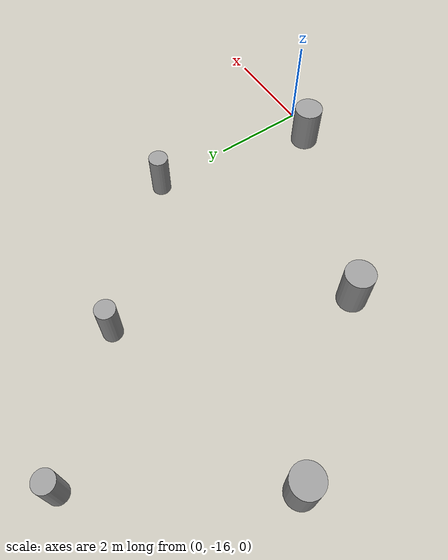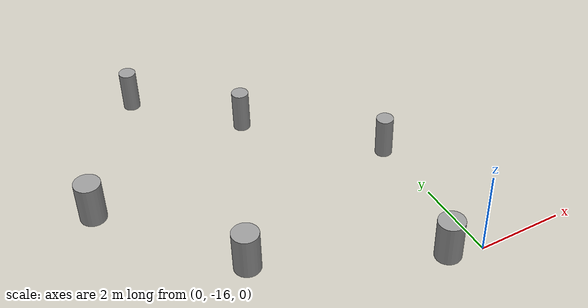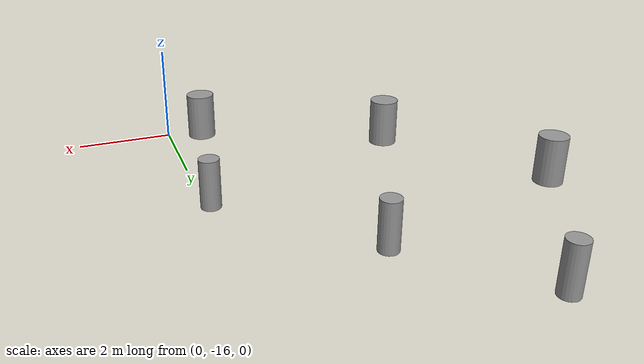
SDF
<sdf version="1.6">
 <world name="default">
  <model name="cylinder_right_clone_clone_3">
   <link name="link_0">
    <inertial>
     <mass>1</mass>
     <inertia><ixx>0.145833</ixx><ixy>0</ixy><ixz>0</ixz><iyy>0.145833</iyy><iyz>0</iyz><izz>0.125</izz></inertia>
    </inertial>
    <visual name="visual">
     <geometry><cylinder><radius>0.2</radius><length>1</length></cylinder></geometry>
     <material>
      <lighting>1</lighting>
      <script><uri>file://media/materials/scripts/gazebo.material</uri><name>Gazebo/Grey</name></script>
      <ambient>0.3 0.3 0.3 1</ambient>
      <diffuse>0.7 0.7 0.7 1</diffuse>
      <specular>0.01 0.01 0.01 1</specular>
      <emissive>0 0 0 1</emissive>
      <shader type="vertex"><normal_map>__default__</normal_map></shader>
     </material>
    </visual>
    <collision name="collision">
     <geometry><cylinder><radius>0.2</radius><length>1</length></cylinder></geometry>
     <surface>
      <friction>
       <ode><mu>1</mu><mu2>1</mu2><fdir1>0 0 0</fdir1><slip1>0</slip1><slip2>0</slip2></ode>
       <torsional>
        <coefficient>1</coefficient>
        <patch_radius>0</patch_radius>
        <surface_radius>0</surface_radius>
        <use_patch_radius>1</use_patch_radius>
        <ode><slip>0</slip></ode>
       </torsional>
      </friction>
      <bounce><restitution_coefficient>0</restitution_coefficient><threshold>1e+06</threshold></bounce>
      <contact>
       <collide_without_contact>0</collide_without_contact>
       <collide_without_contact_bitmask>1</collide_without_contact_bitmask>
       <collide_bitmask>1</collide_bitmask>
       <ode>
        <soft_cfm>0</soft_cfm>
        <soft_erp>0.2</soft_erp>
        <kp>1e+13</kp>
        <kd>1</kd>
        <max_vel>0.01</max_vel>
        <min_depth>0</min_depth>
       </ode>
       <bullet>
        <split_impulse>1</split_impulse>
        <split_impulse_penetration_threshold>-0.01</split_impulse_penetration_threshold>
        <soft_cfm>0</soft_cfm>
        <soft_erp>0.2</soft_erp>
        <kp>1e+13</kp>
        <kd>1</kd>
       </bullet>
      </contact>
     </surface>
    </collision>
   </link>
   <static>0</static>
   <pose>-0.108887 -12.2882 0.49912 0 -0 0.000411</pose>
  </model>
  <model name="cylinder_left_clone_2_clone_15_clone_1">
   <link name="link_1">
    <inertial>
     <mass>1</mass>
     <inertia><ixx>0.145833</ixx><ixy>0</ixy><ixz>0</ixz><iyy>0.145833</iyy><iyz>0</iyz><izz>0.125</izz></inertia>
    </inertial>
    <visual name="visual">
     <geometry><cylinder><radius>0.3</radius><length>1</length></cylinder></geometry>
     <material>
      <lighting>1</lighting>
      <script><uri>file://media/materials/scripts/gazebo.material</uri><name>Gazebo/Grey</name></script>
      <ambient>0.3 0.3 0.3 1</ambient>
      <diffuse>0.7 0.7 0.7 1</diffuse>
      <specular>0.01 0.01 0.01 1</specular>
      <emissive>0 0 0 1</emissive>
      <shader type="vertex"><normal_map>__default__</normal_map></shader>
     </material>
    </visual>
    <collision name="collision">
     <geometry><cylinder><radius>0.3</radius><length>1</length></cylinder></geometry>
     <surface>
      <friction>
       <ode><mu>1</mu><mu2>1</mu2><fdir1>0 0 0</fdir1><slip1>0</slip1><slip2>0</slip2></ode>
       <torsional>
        <coefficient>1</coefficient>
        <patch_radius>0</patch_radius>
        <surface_radius>0</surface_radius>
        <use_patch_radius>1</use_patch_radius>
        <ode><slip>0</slip></ode>
       </torsional>
      </friction>
      <bounce><restitution_coefficient>0</restitution_coefficient><threshold>1e+06</threshold></bounce>
      <contact>
       <collide_without_contact>0</collide_without_contact>
       <collide_without_contact_bitmask>1</collide_without_contact_bitmask>
       <collide_bitmask>1</collide_bitmask>
       <ode>
        <soft_cfm>0</soft_cfm>
        <soft_erp>0.2</soft_erp>
        <kp>1e+13</kp>
        <kd>1</kd>
        <max_vel>0.01</max_vel>
        <min_depth>0</min_depth>
       </ode>
       <bullet>
        <split_impulse>1</split_impulse>
        <split_impulse_penetration_threshold>-0.01</split_impulse_penetration_threshold>
        <soft_cfm>0</soft_cfm>
        <soft_erp>0.2</soft_erp>
        <kp>1e+13</kp>
        <kd>1</kd>
       </bullet>
      </contact>
     </surface>
    </collision>
   </link>
   <static>0</static>
   <pose>-0.738868 -15.7692 0.49912 0 -0 1.95059</pose>
  </model>
  <model name="cylinder_left_clone_2_clone_15_clone_2">
   <link name="link_1">
    <inertial>
     <mass>1</mass>
     <inertia><ixx>0.145833</ixx><ixy>0</ixy><ixz>0</ixz><iyy>0.145833</iyy><iyz>0</iyz><izz>0.125</izz></inertia>
    </inertial>
    <visual name="visual">
     <geometry><cylinder><radius>0.3</radius><length>1</length></cylinder></geometry>
     <material>
      <lighting>1</lighting>
      <script><uri>file://media/materials/scripts/gazebo.material</uri><name>Gazebo/Grey</name></script>
      <ambient>0.3 0.3 0.3 1</ambient>
      <diffuse>0.7 0.7 0.7 1</diffuse>
      <specular>0.01 0.01 0.01 1</specular>
      <emissive>0 0 0 1</emissive>
      <shader type="vertex"><normal_map>__default__</normal_map></shader>
     </material>
    </visual>
    <collision name="collision">
     <geometry><cylinder><radius>0.3</radius><length>1</length></cylinder></geometry>
     <surface>
      <friction>
       <ode><mu>1</mu><mu2>1</mu2><fdir1>0 0 0</fdir1><slip1>0</slip1><slip2>0</slip2></ode>
       <torsional>
        <coefficient>1</coefficient>
        <patch_radius>0</patch_radius>
        <surface_radius>0</surface_radius>
        <use_patch_radius>1</use_patch_radius>
        <ode><slip>0</slip></ode>
       </torsional>
      </friction>
      <bounce><restitution_coefficient>0</restitution_coefficient><threshold>1e+06</threshold></bounce>
      <contact>
       <collide_without_contact>0</collide_without_contact>
       <collide_without_contact_bitmask>1</collide_without_contact_bitmask>
       <collide_bitmask>1</collide_bitmask>
       <ode>
        <soft_cfm>0</soft_cfm>
        <soft_erp>0.2</soft_erp>
        <kp>1e+13</kp>
        <kd>1</kd>
        <max_vel>0.01</max_vel>
        <min_depth>0</min_depth>
       </ode>
       <bullet>
        <split_impulse>1</split_impulse>
        <split_impulse_penetration_threshold>-0.01</split_impulse_penetration_threshold>
        <soft_cfm>0</soft_cfm>
        <soft_erp>0.2</soft_erp>
        <kp>1e+13</kp>
        <kd>1</kd>
       </bullet>
      </contact>
     </surface>
    </collision>
   </link>
   <static>0</static>
   <pose>-4.53024 -13.9687 0.49912 0 -0 1.95059</pose>
  </model>
  <model name="cylinder_left_clone_2_clone_15_clone_3">
   <link name="link_1">
    <inertial>
     <mass>1</mass>
     <inertia><ixx>0.145833</ixx><ixy>0</ixy><ixz>0</ixz><iyy>0.145833</iyy><iyz>0</iyz><izz>0.125</izz></inertia>
    </inertial>
    <visual name="visual">
     <geometry><cylinder><radius>0.3</radius><length>1</length></cylinder></geometry>
     <material>
      <lighting>1</lighting>
      <script><uri>file://media/materials/scripts/gazebo.material</uri><name>Gazebo/Grey</name></script>
      <ambient>0.3 0.3 0.3 1</ambient>
      <diffuse>0.7 0.7 0.7 1</diffuse>
      <specular>0.01 0.01 0.01 1</specular>
      <emissive>0 0 0 1</emissive>
      <shader type="vertex"><normal_map>__default__</normal_map></shader>
     </material>
    </visual>
    <collision name="collision">
     <geometry><cylinder><radius>0.3</radius><length>1</length></cylinder></geometry>
     <surface>
      <friction>
       <ode><mu>1</mu><mu2>1</mu2><fdir1>0 0 0</fdir1><slip1>0</slip1><slip2>0</slip2></ode>
       <torsional>
        <coefficient>1</coefficient>
        <patch_radius>0</patch_radius>
        <surface_radius>0</surface_radius>
        <use_patch_radius>1</use_patch_radius>
        <ode><slip>0</slip></ode>
       </torsional>
      </friction>
      <bounce><restitution_coefficient>0</restitution_coefficient><threshold>1e+06</threshold></bounce>
      <contact>
       <collide_without_contact>0</collide_without_contact>
       <collide_without_contact_bitmask>1</collide_without_contact_bitmask>
       <collide_bitmask>1</collide_bitmask>
       <ode>
        <soft_cfm>0</soft_cfm>
        <soft_erp>0.2</soft_erp>
        <kp>1e+13</kp>
        <kd>1</kd>
        <max_vel>0.01</max_vel>
        <min_depth>0</min_depth>
       </ode>
       <bullet>
        <split_impulse>1</split_impulse>
        <split_impulse_penetration_threshold>-0.01</split_impulse_penetration_threshold>
        <soft_cfm>0</soft_cfm>
        <soft_erp>0.2</soft_erp>
        <kp>1e+13</kp>
        <kd>1</kd>
       </bullet>
      </contact>
     </surface>
    </collision>
   </link>
   <static>0</static>
   <pose>-6.77597 -10.9682 0.49912 0 -0 1.95059</pose>
  </model>
  <model name="cylinder_right_clone_clone_clone_4">
   <link name="link_0">
    <inertial>
     <mass>1</mass>
     <inertia><ixx>0.145833</ixx><ixy>0</ixy><ixz>0</ixz><iyy>0.145833</iyy><iyz>0</iyz><izz>0.125</izz></inertia>
    </inertial>
    <visual name="visual">
     <geometry><cylinder><radius>0.2</radius><length>1</length></cylinder></geometry>
     <material>
      <lighting>1</lighting>
      <script><uri>file://media/materials/scripts/gazebo.material</uri><name>Gazebo/Grey</name></script>
      <ambient>0.3 0.3 0.3 1</ambient>
      <diffuse>0.7 0.7 0.7 1</diffuse>
      <specular>0.01 0.01 0.01 1</specular>
      <emissive>0 0 0 1</emissive>
      <shader type="vertex"><normal_map>__default__</normal_map></shader>
     </material>
    </visual>
    <collision name="collision">
     <geometry><cylinder><radius>0.2</radius><length>1</length></cylinder></geometry>
     <surface>
      <friction>
       <ode><mu>1</mu><mu2>1</mu2><fdir1>0 0 0</fdir1><slip1>0</slip1><slip2>0</slip2></ode>
       <torsional>
        <coefficient>1</coefficient>
        <patch_radius>0</patch_radius>
        <surface_radius>0</surface_radius>
        <use_patch_radius>1</use_patch_radius>
        <ode><slip>0</slip></ode>
       </torsional>
      </friction>
      <bounce><restitution_coefficient>0</restitution_coefficient><threshold>1e+06</threshold></bounce>
      <contact>
       <collide_without_contact>0</collide_without_contact>
       <collide_without_contact_bitmask>1</collide_without_contact_bitmask>
       <collide_bitmask>1</collide_bitmask>
       <ode>
        <soft_cfm>0</soft_cfm>
        <soft_erp>0.2</soft_erp>
        <kp>1e+13</kp>
        <kd>1</kd>
        <max_vel>0.01</max_vel>
        <min_depth>0</min_depth>
       </ode>
       <bullet>
        <split_impulse>1</split_impulse>
        <split_impulse_penetration_threshold>-0.01</split_impulse_penetration_threshold>
        <soft_cfm>0</soft_cfm>
        <soft_erp>0.2</soft_erp>
        <kp>1e+13</kp>
        <kd>1</kd>
       </bullet>
      </contact>
     </surface>
    </collision>
   </link>
   <static>0</static>
   <pose>-4.5765 -7.66142 0.49912 0 0 -0.982851</pose>
  </model>
  <model name="cylinder_right_clone_clone_clone_5">
   <link name="link_0">
    <inertial>
     <mass>1</mass>
     <inertia><ixx>0.145833</ixx><ixy>0</ixy><ixz>0</ixz><iyy>0.145833</iyy><iyz>0</iyz><izz>0.125</izz></inertia>
    </inertial>
    <visual name="visual">
     <geometry><cylinder><radius>0.2</radius><length>1</length></cylinder></geometry>
     <material>
      <lighting>1</lighting>
      <script><uri>file://media/materials/scripts/gazebo.material</uri><name>Gazebo/Grey</name></script>
      <ambient>0.3 0.3 0.3 1</ambient>
      <diffuse>0.7 0.7 0.7 1</diffuse>
      <specular>0.01 0.01 0.01 1</specular>
      <emissive>0 0 0 1</emissive>
      <shader type="vertex"><normal_map>__default__</normal_map></shader>
     </material>
    </visual>
    <collision name="collision">
     <geometry><cylinder><radius>0.2</radius><length>1</length></cylinder></geometry>
     <surface>
      <friction>
       <ode><mu>1</mu><mu2>1</mu2><fdir1>0 0 0</fdir1><slip1>0</slip1><slip2>0</slip2></ode>
       <torsional>
        <coefficient>1</coefficient>
        <patch_radius>0</patch_radius>
        <surface_radius>0</surface_radius>
        <use_patch_radius>1</use_patch_radius>
        <ode><slip>0</slip></ode>
       </torsional>
      </friction>
      <bounce><restitution_coefficient>0</restitution_coefficient><threshold>1e+06</threshold></bounce>
      <contact>
       <collide_without_contact>0</collide_without_contact>
       <collide_without_contact_bitmask>1</collide_without_contact_bitmask>
       <collide_bitmask>1</collide_bitmask>
       <ode>
        <soft_cfm>0</soft_cfm>
        <soft_erp>0.2</soft_erp>
        <kp>1e+13</kp>
        <kd>1</kd>
        <max_vel>0.01</max_vel>
        <min_depth>0</min_depth>
       </ode>
       <bullet>
        <split_impulse>1</split_impulse>
        <split_impulse_penetration_threshold>-0.01</split_impulse_penetration_threshold>
        <soft_cfm>0</soft_cfm>
        <soft_erp>0.2</soft_erp>
        <kp>1e+13</kp>
        <kd>1</kd>
       </bullet>
      </contact>
     </surface>
    </collision>
   </link>
   <static>0</static>
   <pose>-2.56257 -9.75457 0.49912 0 0 -0.982853</pose>
  </model>
 </world>
</sdf>
